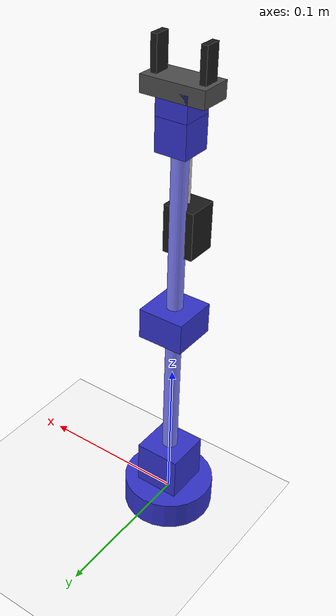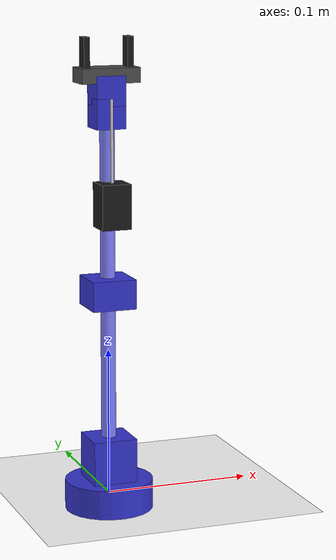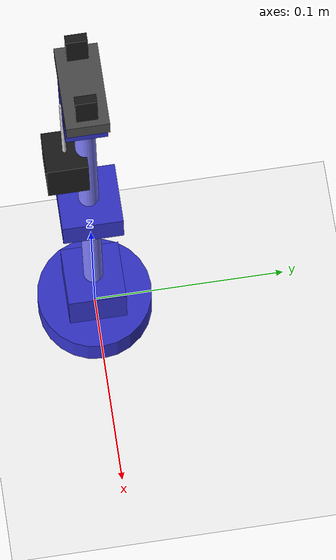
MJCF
<mujoco model="follower_arm">
    <visual>
        <headlight diffuse="0.6 0.6 0.6" ambient="0.3 0.3 0.3" specular="0 0 0"/>
        <rgba haze="0.15 0.25 0.35 1"/>
        <global azimuth="120" elevation="-20"/>
    </visual>

    <asset>
        <texture type="skybox" builtin="gradient" rgb1="0.3 0.5 0.7" rgb2="0 0 0" width="512" height="512"/>
        <texture name="grid" type="2d" builtin="checker" rgb1="0.2 0.3 0.4" rgb2="0.1 0.2 0.3" width="512" height="512"/>
        <material name="floor_mat" texture="grid" texrepeat="1 1" texuniform="true" reflectance="0.2"/>
    </asset>

    <default>
        <joint armature="0.01" damping="0.1" limited="true"/>
        <geom conaffinity="1" condim="3" density="100" friction="1 0.5 0.5" margin="0.001" rgba="0.2 0.2 0.8 1"/>
        <!-- MG90S Stall Torque: 0.2 Nm -->
        <position kp="2" forcelimited="true" forcerange="-0.2 0.2"/>
    </default>

    <worldbody>
        <!-- Environment -->
        <light dir="-0 0 -1" pos="0 0 1.5" castshadow="false"/>
        <geom name="floor" type="plane" size="0.4 0.4 0.1" material="floor_mat" rgba="1 1 1 1" pos="0 0 -0.01"/>

        <!-- World Frame XYZ: Z is UP, X is FORWARD, Y is LEFT -->
        <body name="f_base" pos="0 0 0">
            <!-- J1 aligns with Z -->
            <geom name="f_base_geom" type="cylinder" size="0.03 0.01"/>
            <joint name="f_joint1" type="hinge" axis="0 0 1" range="-170 170"/>

            <body name="f_shoulder" pos="0 0 0.02">
                <!-- J2 aligns with Y (Pitch) -->
                <geom name="f_shoulder_geom" type="box" size="0.015 0.015 0.02" pos="0 0 0"/>
                <joint name="f_joint2" type="hinge" axis="0 1 0" range="-90 90"/>

                <body name="f_upper_arm" pos="0 0 0">
                    <!-- L1 = 12cm -->
                    <geom name="f_upper_arm_geom" type="cylinder" size="0.005 0.06" rgba="0.5 0.5 1 1" pos="0 0 0.06"/>

                    <body name="f_elbow" pos="0 0 0.12">
                        <!-- J3 aligns with Y (Pitch) -->
                        <geom name="f_elbow_geom" type="box" size="0.015 0.015 0.01" pos="0 0 0"/>
                        <joint name="f_joint3" type="hinge" axis="0 1 0" range="-120 120"/>

                        <body name="f_forearm" pos="0 0 0">
                            <!-- L2 = 12cm -->
                            <geom name="f_forearm_geom" type="cylinder" size="0.005 0.06" rgba="0.5 0.5 1 1" pos="0 0 0.06"/>
                            <!-- Remote J6 Actuator (Servo mass 13.4g) located on forearm to reduce tip momentum -->
                            <geom name="f_remote_j6_servo" type="box" size="0.01 0.01 0.015" pos="0 -0.01 0.06" rgba="0.1 0.1 0.1 1" mass="0.0134"/>
                            <!-- Actuation Rod simulation (purely visual/mass) -->
                            <geom name="f_actuation_rod" type="cylinder" size="0.001 0.03" pos="0 -0.01 0.10" rgba="0.8 0.8 0.8 1" mass="0.002" conaffinity="0" contype="0"/>

                            <body name="f_wrist_pitch" pos="0 0 0.12">
                                <!-- J4 aligns with Y (Pitch) -->
                                <geom name="f_wrist_geom" type="box" size="0.01 0.01 0.01" pos="0 0 0"/>
                                <joint name="f_joint4" type="hinge" axis="0 1 0" range="-90 90"/>

                                <body name="f_wrist_roll" pos="0 0 0.015">
                                    <!-- J5 aligns with Z (Roll) -->
                                    <geom name="f_wrist_roll_geom" type="box" size="0.01 0.01 0.01"/>
                                    <joint name="f_joint5" type="hinge" axis="0 0 1" range="-170 170"/>

                                    <body name="f_gripper" pos="0 0 0.01">
                                        <geom name="f_gripper_palm" type="box" size="0.02 0.01 0.005" rgba="0.3 0.3 0.3 1"/>
                                        <body name="f_left_finger" pos="-0.015 0 0.01">
                                            <!-- Gripper actuated by rod from forearm remote servo -->
                                            <geom name="f_left_finger_geom" type="box" size="0.002 0.005 0.015" rgba="0.1 0.1 0.1 1"/>
                                            <joint name="f_joint6_l" type="hinge" axis="0 1 0" range="0 45"/>
                                        </body>
                                        <body name="f_right_finger" pos="0.015 0 0.01">
                                            <geom name="f_right_finger_geom" type="box" size="0.002 0.005 0.015" rgba="0.1 0.1 0.1 1"/>
                                            <joint name="f_joint6_r" type="hinge" axis="0 -1 0" range="0 45"/>
                                        </body>
                                    </body>
                                </body>
                            </body>
                        </body>
                    </body>
                </body>
            </body>
        </body>
    </worldbody>

    <actuator>
        <position name="f_motor1" joint="f_joint1"/>
        <position name="f_motor2" joint="f_joint2"/>
        <position name="f_motor3" joint="f_joint3"/>
        <position name="f_motor4" joint="f_joint4"/>
        <position name="f_motor5" joint="f_joint5"/>
        <position name="f_motor6" joint="f_joint6_l" kp="5"/>
        <position name="f_motor7" joint="f_joint6_r" kp="5"/>
    </actuator>
</mujoco>
